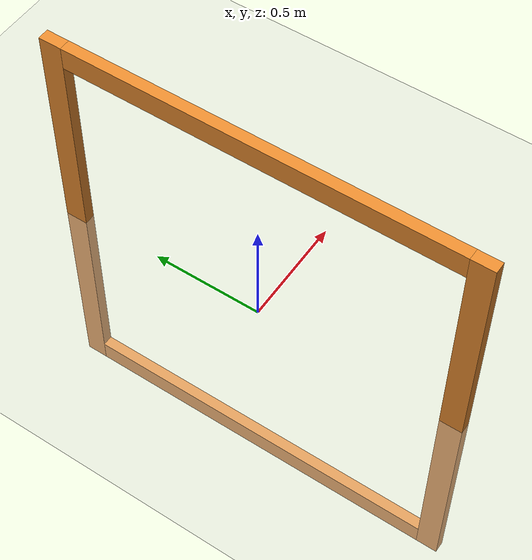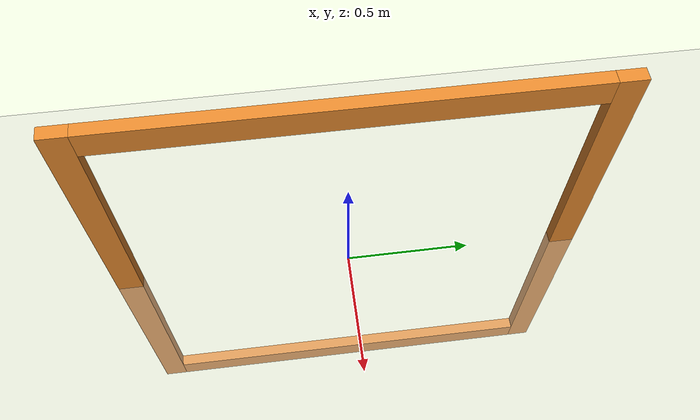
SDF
<sdf version="1.4">
 <world name="smart_drone_simple_world">
  <include><uri>model://ground_plane</uri></include>
  <include><uri>model://sun</uri></include>
  <model name="smart_drone_orange_gate2">
   <link name="left">
    <pose>0 -0.9 0 0 -0 0</pose>
    <inertial>
     <mass>1</mass>
     <inertia>
      <ixx>0.166667</ixx>
      <ixy>0</ixy>
      <ixz>0</ixz>
      <iyy>0.166667</iyy>
      <iyz>0</iyz>
      <izz>0.166667</izz>
     </inertia>
     <pose>0 -0.9 0 0 -0 0</pose>
    </inertial>
    <visual name="visual">
     <geometry><box><size>0.05 0.1 2</size></box></geometry>
     <material>
      <lighting>1</lighting>
      <script><uri>file://media/materials/scripts/gazebo.material</uri><name>Gazebo/Grey</name></script>
      <shader type="pixel"><normal_map>__default__</normal_map></shader>
      <ambient>0.9 0.54 0.18 1</ambient>
      <diffuse>0.9 0.54 0.18 1</diffuse>
      <specular>0.9 0.54 0.18 1</specular>
      <emissive>0 0 0 1</emissive>
     </material>
    </visual>
    <collision name="collision">
     <geometry><box><size>0.05 0.1 2</size></box></geometry>
     <surface>
      <friction>
       <ode><mu>1</mu><mu2>1</mu2><fdir1>0 0 0</fdir1><slip1>0</slip1><slip2>0</slip2></ode>
       <torsional>
        <coefficient>1</coefficient>
        <patch_radius>0</patch_radius>
        <surface_radius>0</surface_radius>
        <use_patch_radius>1</use_patch_radius>
        <ode><slip>0</slip></ode>
       </torsional>
      </friction>
      <bounce><restitution_coefficient>0</restitution_coefficient><threshold>1e+06</threshold></bounce>
      <contact>
       <collide_without_contact>0</collide_without_contact>
       <collide_without_contact_bitmask>1</collide_without_contact_bitmask>
       <collide_bitmask>1</collide_bitmask>
       <ode>
        <soft_cfm>0</soft_cfm>
        <soft_erp>0.2</soft_erp>
        <kp>1e+13</kp>
        <kd>1</kd>
        <max_vel>0.01</max_vel>
        <min_depth>0</min_depth>
       </ode>
       <bullet>
        <split_impulse>1</split_impulse>
        <split_impulse_penetration_threshold>-0.01</split_impulse_penetration_threshold>
        <soft_cfm>0</soft_cfm>
        <soft_erp>0.2</soft_erp>
        <kp>1e+13</kp>
        <kd>1</kd>
       </bullet>
      </contact>
     </surface>
    </collision>
   </link>
   <link name="top">
    <pose>0 0 0.95 0 -0 0</pose>
    <inertial>
     <mass>1</mass>
     <inertia>
      <ixx>0.166667</ixx>
      <ixy>0</ixy>
      <ixz>0</ixz>
      <iyy>0.166667</iyy>
      <iyz>0</iyz>
      <izz>0.166667</izz>
     </inertia>
     <pose>0 0 0.95 0 -0 0</pose>
    </inertial>
    <visual name="visual">
     <geometry><box><size>0.05 1.7 0.1</size></box></geometry>
     <material>
      <lighting>1</lighting>
      <script><uri>file://media/materials/scripts/gazebo.material</uri><name>Gazebo/Grey</name></script>
      <shader type="pixel"><normal_map>__default__</normal_map></shader>
      <ambient>0.9 0.54 0.18 1</ambient>
      <diffuse>0.9 0.54 0.18 1</diffuse>
      <specular>0.9 0.54 0.18 1</specular>
      <emissive>0 0 0 1</emissive>
     </material>
    </visual>
    <collision name="collision">
     <geometry><box><size>0.05 1.7 0.1</size></box></geometry>
     <surface>
      <friction>
       <ode><mu>1</mu><mu2>1</mu2><fdir1>0 0 0</fdir1><slip1>0</slip1><slip2>0</slip2></ode>
       <torsional>
        <coefficient>1</coefficient>
        <patch_radius>0</patch_radius>
        <surface_radius>0</surface_radius>
        <use_patch_radius>1</use_patch_radius>
        <ode><slip>0</slip></ode>
       </torsional>
      </friction>
      <bounce><restitution_coefficient>0</restitution_coefficient><threshold>1e+06</threshold></bounce>
      <contact>
       <collide_without_contact>0</collide_without_contact>
       <collide_without_contact_bitmask>1</collide_without_contact_bitmask>
       <collide_bitmask>1</collide_bitmask>
       <ode>
        <soft_cfm>0</soft_cfm>
        <soft_erp>0.2</soft_erp>
        <kp>1e+13</kp>
        <kd>1</kd>
        <max_vel>0.01</max_vel>
        <min_depth>0</min_depth>
       </ode>
       <bullet>
        <split_impulse>1</split_impulse>
        <split_impulse_penetration_threshold>-0.01</split_impulse_penetration_threshold>
        <soft_cfm>0</soft_cfm>
        <soft_erp>0.2</soft_erp>
        <kp>1e+13</kp>
        <kd>1</kd>
       </bullet>
      </contact>
     </surface>
    </collision>
   </link>
   <link name="bot">
    <pose>0 0 -0.95 0 -0 0</pose>
    <inertial>
     <mass>1</mass>
     <inertia>
      <ixx>0.166667</ixx>
      <ixy>0</ixy>
      <ixz>0</ixz>
      <iyy>0.166667</iyy>
      <iyz>0</iyz>
      <izz>0.166667</izz>
     </inertia>
     <pose>0 0 -0.95 0 -0 0</pose>
    </inertial>
    <visual name="visual">
     <geometry><box><size>0.05 1.7 0.1</size></box></geometry>
     <material>
      <lighting>1</lighting>
      <script><uri>file://media/materials/scripts/gazebo.material</uri><name>Gazebo/Grey</name></script>
      <shader type="pixel"><normal_map>__default__</normal_map></shader>
      <ambient>0.9 0.54 0.18 1</ambient>
      <diffuse>0.9 0.54 0.18 1</diffuse>
      <specular>0.9 0.54 0.18 1</specular>
      <emissive>0 0 0 1</emissive>
     </material>
    </visual>
    <collision name="collision">
     <geometry><box><size>0.05 1.7 0.1</size></box></geometry>
     <surface>
      <friction>
       <ode><mu>1</mu><mu2>1</mu2><fdir1>0 0 0</fdir1><slip1>0</slip1><slip2>0</slip2></ode>
       <torsional>
        <coefficient>1</coefficient>
        <patch_radius>0</patch_radius>
        <surface_radius>0</surface_radius>
        <use_patch_radius>1</use_patch_radius>
        <ode><slip>0</slip></ode>
       </torsional>
      </friction>
      <bounce><restitution_coefficient>0</restitution_coefficient><threshold>1e+06</threshold></bounce>
      <contact>
       <collide_without_contact>0</collide_without_contact>
       <collide_without_contact_bitmask>1</collide_without_contact_bitmask>
       <collide_bitmask>1</collide_bitmask>
       <ode>
        <soft_cfm>0</soft_cfm>
        <soft_erp>0.2</soft_erp>
        <kp>1e+13</kp>
        <kd>1</kd>
        <max_vel>0.01</max_vel>
        <min_depth>0</min_depth>
       </ode>
       <bullet>
        <split_impulse>1</split_impulse>
        <split_impulse_penetration_threshold>-0.01</split_impulse_penetration_threshold>
        <soft_cfm>0</soft_cfm>
        <soft_erp>0.2</soft_erp>
        <kp>1e+13</kp>
        <kd>1</kd>
       </bullet>
      </contact>
     </surface>
    </collision>
   </link>
   <link name="right">
    <pose>0 0.9 0 0 -0 0</pose>
    <inertial>
     <mass>1</mass>
     <inertia>
      <ixx>0.166667</ixx>
      <ixy>0</ixy>
      <ixz>0</ixz>
      <iyy>0.166667</iyy>
      <iyz>0</iyz>
      <izz>0.166667</izz>
     </inertia>
     <pose>0 0.9 0 0 -0 0</pose>
    </inertial>
    <visual name="visual">
     <geometry><box><size>0.05 0.1 2</size></box></geometry>
     <material>
      <lighting>1</lighting>
      <script><uri>file://media/materials/scripts/gazebo.material</uri><name>Gazebo/Grey</name></script>
      <shader type="pixel"><normal_map>__default__</normal_map></shader>
      <ambient>0.9 0.54 0.18 1</ambient>
      <diffuse>0.9 0.54 0.18 1</diffuse>
      <specular>0.9 0.54 0.18 1</specular>
      <emissive>0 0 0 1</emissive>
     </material>
    </visual>
    <collision name="collision">
     <geometry><box><size>0.05 0.1 2</size></box></geometry>
     <surface>
      <friction>
       <ode><mu>1</mu><mu2>1</mu2><fdir1>0 0 0</fdir1><slip1>0</slip1><slip2>0</slip2></ode>
       <torsional>
        <coefficient>1</coefficient>
        <patch_radius>0</patch_radius>
        <surface_radius>0</surface_radius>
        <use_patch_radius>1</use_patch_radius>
        <ode><slip>0</slip></ode>
       </torsional>
      </friction>
      <bounce><restitution_coefficient>0</restitution_coefficient><threshold>1e+06</threshold></bounce>
      <contact>
       <collide_without_contact>0</collide_without_contact>
       <collide_without_contact_bitmask>1</collide_without_contact_bitmask>
       <collide_bitmask>1</collide_bitmask>
       <ode>
        <soft_cfm>0</soft_cfm>
        <soft_erp>0.2</soft_erp>
        <kp>1e+13</kp>
        <kd>1</kd>
        <max_vel>0.01</max_vel>
        <min_depth>0</min_depth>
       </ode>
       <bullet>
        <split_impulse>1</split_impulse>
        <split_impulse_penetration_threshold>-0.01</split_impulse_penetration_threshold>
        <soft_cfm>0</soft_cfm>
        <soft_erp>0.2</soft_erp>
        <kp>1e+13</kp>
        <kd>1</kd>
       </bullet>
      </contact>
     </surface>
    </collision>
   </link>
   <static>1</static>
  </model>
 </world>
</sdf>
